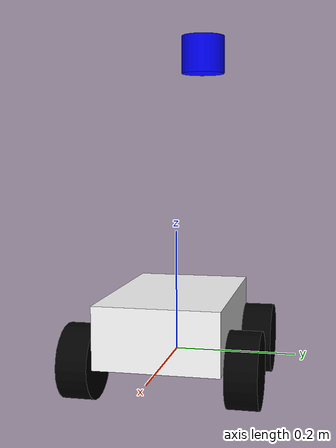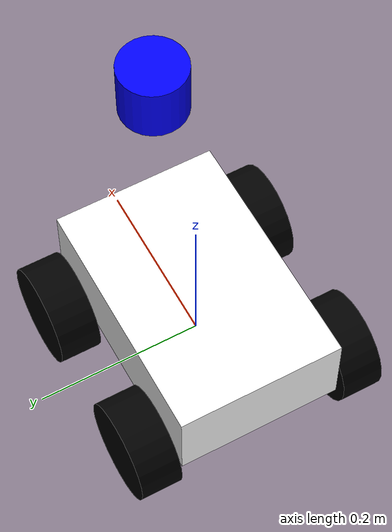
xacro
<?xml version="1.0"?>

<robot name="robot" xmlns:xacro="http://www.ros.org/wiki/xacro">

  <xacro:property name="length_wheel" value="0.05" />
  <xacro:property name="radius_wheel" value="0.06" />
  <xacro:property name="PI" value="3.1415926"/>
  <xacro:macro name="default_inertial" params="mass">
    <inertial>
      <mass value="${mass}" />
      <inertia ixx="0.01" ixy="0.0" ixz="0.0"
                    iyy="0.01" iyz="0.0" izz="0.01" />
    </inertial>
  </xacro:macro>

  <!-- base_link to primary livox_frame -->
  <xacro:arg name="xyz" default="0.0 0.045 0.49" />
  <xacro:arg name="rpy" default="0 0 0" />
  <xacro:arg name="dual_lidar" default="false" />
  <xacro:arg name="right_xyz" default="0.12 -0.14 0.49" />
  <xacro:arg name="right_rpy" default="0 0 -0.610865" />

  <link name="base_link">
    <visual>
      <geometry>
        <box size="0.2 .3 .1"/>
      </geometry>
      <origin rpy="0 0 ${PI/2}" xyz="0 0 0.05"/>
      <material name="white">
        <color rgba="1 1 1 1"/>
      </material>
    </visual>
    <collision>
      <geometry>
        <box size="0.2 .3 0.1"/>
      </geometry>
      <origin rpy="0 0 ${PI/2}" xyz="0 0 0.05"/>
    </collision>
    <xacro:default_inertial mass="8.2"/>
  </link>

  <link name="wheel_1">
    <visual>
      <geometry>
        <cylinder length="${length_wheel}" radius="${radius_wheel}"/>
      </geometry>
      <origin rpy="0 0 0" xyz="0 0 0"/>
      <material name="black">
        <color rgba="0 0 0 1"/>
      </material>
    </visual>
    <collision>
      <geometry>
        <cylinder length="${length_wheel}" radius="${radius_wheel}"/>
      </geometry>
    </collision>
    <mu1>0.5</mu1>
    <mu2>0.5</mu2>
    <xacro:default_inertial mass="0.5"/>
  </link>

  <link name="wheel_2">
    <visual>
      <geometry>
        <cylinder length="${length_wheel}" radius="${radius_wheel}"/>
      </geometry>
      <origin rpy="0 0 0" xyz="0 0 0"/>
      <material name="black"/>
    </visual>
    <collision>
      <geometry>
        <cylinder length="${length_wheel}" radius="${radius_wheel}"/>
      </geometry>
    </collision>
    <mu1>0.5</mu1>
    <mu2>0.5</mu2>
    <xacro:default_inertial mass="0.5"/>
  </link>

  <link name="wheel_3">
    <visual>
      <geometry>
        <cylinder length="${length_wheel}" radius="${radius_wheel}"/>
      </geometry>
      <origin rpy="0 0 0" xyz="0 0 0"/>
      <material name="black"/>
    </visual>
    <collision>
      <geometry>
        <cylinder length="${length_wheel}" radius="${radius_wheel}"/>
      </geometry>
    </collision>
    <mu1>0.5</mu1>
    <mu2>0.5</mu2>
    <xacro:default_inertial mass="0.5"/>
  </link>

  <link name="wheel_4">
    <visual>
      <geometry>
        <cylinder length="${length_wheel}" radius="${radius_wheel}"/>
      </geometry>
      <origin rpy="0 0 0" xyz="0 0 0" />
      <material name="black"/>
    </visual>
    <collision>
      <geometry>
        <cylinder length="${length_wheel}" radius="${radius_wheel}"/>
      </geometry>
    </collision>
    <mu1>0.5</mu1>
    <mu2>0.5</mu2>
    <xacro:default_inertial mass="0.5"/>
  </link>

  <joint name="base_to_wheel1" type="fixed">
    <parent link="base_link"/>
    <child link="wheel_1"/>
    <origin rpy="${-PI/2} 0 0" xyz="0.1 0.13 0"/>
    <axis xyz="0 0 1" />
  </joint>

  <joint name="base_to_wheel2" type="fixed">
    <axis xyz="0 0 1" />
    <anchor xyz="0 0 0" />
    <limit effort="100" velocity="100" />
    <parent link="base_link"/>
    <child link="wheel_2"/>
    <origin rpy="${-PI/2} 0 0" xyz="-0.1 0.13 0"/>
  </joint>

  <joint name="base_to_wheel3" type="fixed">
    <parent link="base_link"/>
    <axis xyz="0 0 1" />
    <child link="wheel_3"/>
    <origin rpy="${-PI/2} 0 0" xyz="0.1 -0.13 0"/>
  </joint>

  <joint name="base_to_wheel4" type="fixed">
    <parent link="base_link"/>
    <axis xyz="0 0 1" />
    <child link="wheel_4"/>
    <origin rpy="${-PI/2} 0 0" xyz="-0.1 -0.13 0"/>
  </joint>

  <!-- Livox-Mid360  -->
  <link name="livox_frame">
    <visual>
      <origin xyz="0.0 0.0 0.0" rpy="0 0 0"/>
      <geometry>
        <!-- Use primitive geometry to avoid RViz stalls when external STL assets are unavailable/corrupted. -->
        <cylinder length="0.06" radius="0.035"/>
      </geometry>
      <material name="blue">
        <color rgba="0 0 1.0 1" />
      </material>
    </visual>
  </link>

  <joint name="livox_joint" type="fixed">
    <origin xyz="$(arg xyz)" rpy="$(arg rpy)" />
    <parent link="base_link"/>
    <child link="livox_frame"/>
  </joint>

  <xacro:if value="$(arg dual_lidar)">
    <link name="livox_right_frame">
      <visual>
        <origin xyz="0.0 0.0 0.0" rpy="0 0 0"/>
        <geometry>
          <!-- Keep same placeholder for right lidar visual. -->
          <cylinder length="0.06" radius="0.035"/>
        </geometry>
        <material name="blue">
          <color rgba="0 0 1.0 1" />
        </material>
      </visual>
    </link>

    <joint name="livox_right_joint" type="fixed">
      <origin xyz="$(arg right_xyz)" rpy="$(arg right_rpy)" />
      <parent link="base_link"/>
      <child link="livox_right_frame"/>
    </joint>
  </xacro:if>

</robot>
